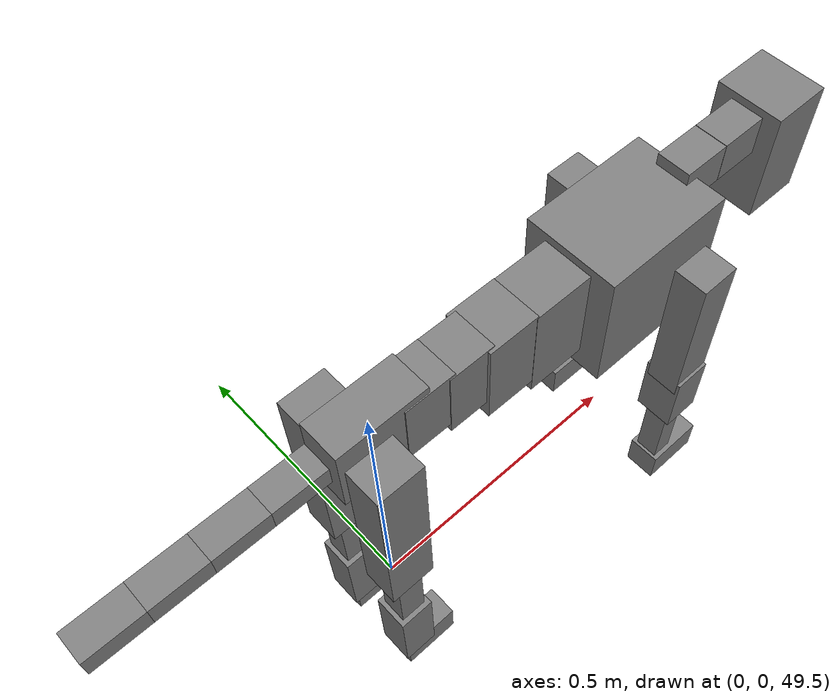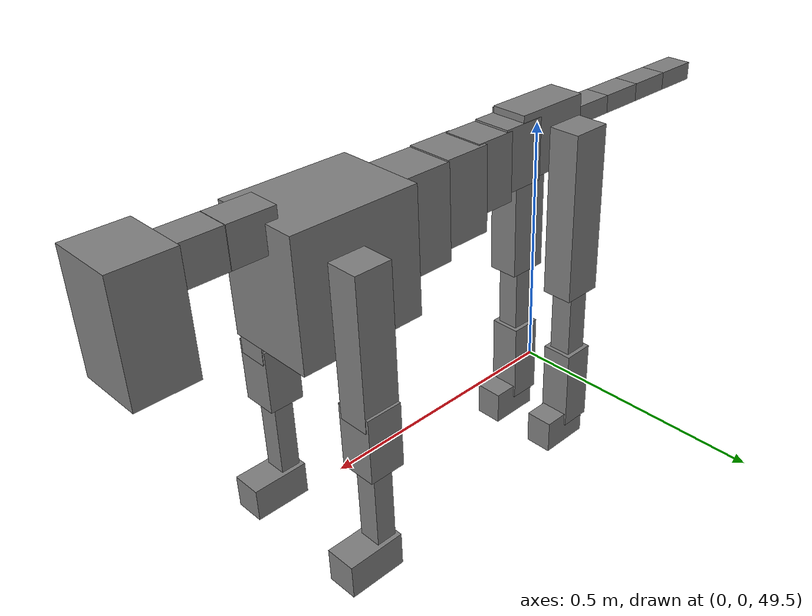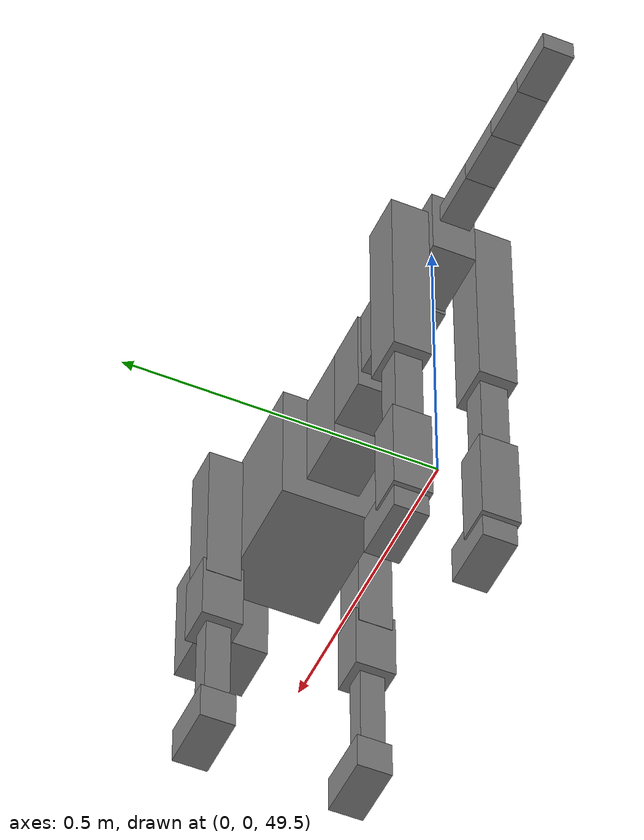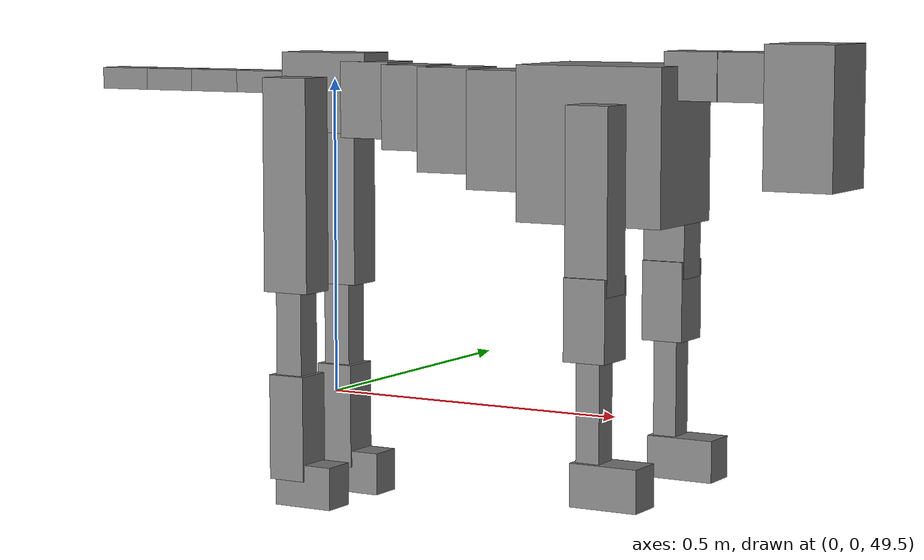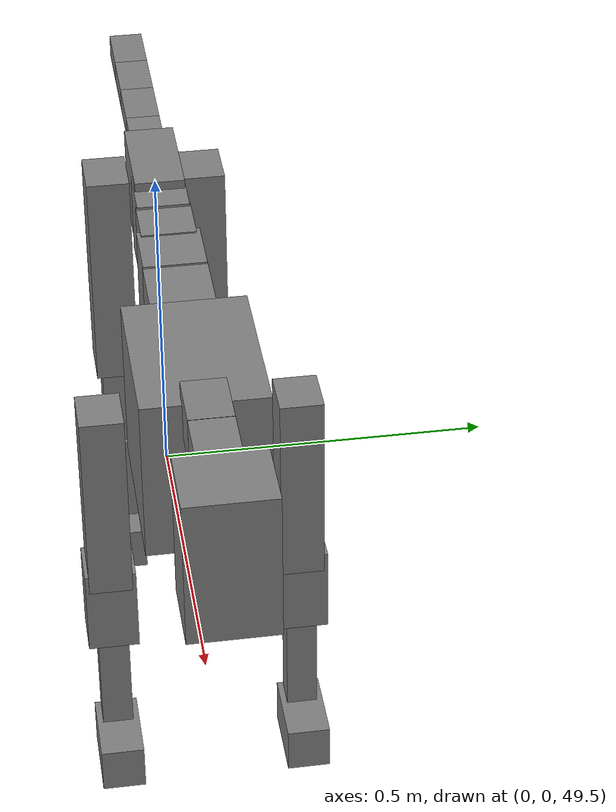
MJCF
<mujoco model="dog">

    <default>
        <joint armature="0.02" stiffness="1" damping="0.2" limited="true"/>
        <geom condim="3" friction="1 0.05 0.05" margin="0.01"/>
        <motor ctrllimited="true" ctrlrange="-1.0 1.0" forcelimited="true" gear="50"/>
    </default>

    <compiler inertiafromgeom="true" angle="radian"/>

    <option timestep="0.016" iterations="50" tolerance="1e-10" solver="Newton" jacobian="dense" cone="pyramidal"/>

    <size nconmax="20000" njmax="60000" nstack="5000000"/>
    <visual>
        <map force="0.1" zfar="30"/>
        <rgba haze="0.15 0.25 0.35 1"/>
        <quality shadowsize="2048"/>
        <global offwidth="800" offheight="800"/>
    </visual>

    <asset>
        <texture type="skybox" builtin="gradient" rgb1="0.3 0.5 0.7" rgb2="0 0 0" width="512" height="512"/>
        <texture name="texplane" type="2d" builtin="checker" rgb1=".2 .3 .4" rgb2=".1 0.15 0.2" width="512" height="512"
                 mark="cross" markrgb=".8 .8 .8"/>
        <texture name="texgeom" type="cube" builtin="flat" mark="cross" width="127" height="1278" rgb1="0.8 0.6 0.4"
                 rgb2="0.8 0.6 0.4" markrgb="1 1 1" random="0.01"/>

        <material name="matplane" reflectance="0.3" texture="texplane" texrepeat="1 1" texuniform="true"/>
        <material name="matgeom" texture="texgeom" texuniform="true" rgba="0.8 0.6 .4 1"/>
    </asset>

    <worldbody>
        <geom name="floor" pos="0 0 0" size="0 0 .25" type="plane" material="matplane" condim="3"/>

        <light directional="false" diffuse=".2 .2 .2" specular="0 0 0" pos="0 0 5" dir="0 0 -1" castshadow="false"/>
        <light mode="targetbodycom" target="torso" directional="false" diffuse=".8 .8 .8" specular="0.3 0.3 0.3"
               pos="0 0 4.0" dir="0 0 -1"/>

        <body name="root" pos="0 0 50">
            <freejoint name="root_1"/>
            <geom type="box" pos="0 0 -0.02" size="0.0774  0.0358  0.063" density="2030"/>

            <body name="spine1" pos="0.054 0 0">
                <joint name="spine1_y" axis="0 1 0" range="0 0.7" limited="true"/>
                <geom type="box" pos="0.02375 0 -0.03" size="0.04375  0.0375  0.05985" density="2030"/>

                <body name="spine2" pos="0.0612 0 0">
                    <joint name="spine2_y" axis="0 1 0" range="-0.15 0.15" limited="true"/>
                    <geom type="box" pos="0.03555  0  -0.04" size="0.04055  0.039  0.06615" density="2030"/>

                    <body name="spine3" pos="0.0730 0 0">
                        <joint name="spine3_y" axis="0 1 0" range="-0.15 0.15" limited="true"/>
                        <geom type="box" pos="0.03555  0  -0.057" size="0.04555  0.0445  0.081" density="2030"/>

                        <body name="spine4" pos="0.0780 0 0">
                            <joint name="spine4_y" axis="0 1 0" range="-0.15 0.15" limited="true"/>
                            <geom type="box" pos="0.05265  0  -0.07" size="0.05265  0.045  0.09135" density="2030"/>

                            <body name="torso" pos="0.1082 0 0">
                                <joint name="torso_y" axis="0 1 0" range="-0.15 0.15" limited="true"/>
                                <geom type="box" pos="0.11925  0  -0.085" size="0.11925  0.085  0.11745"
                                      density="2030"/>

                                <body name="neck1" pos="0.2160  0   0.0180">
                                    <joint name="neck1_y" axis="0 1 0" range="-1.2  -1" limited="true"/>
                                    <geom type="box" pos="0.0423  0  0" size="0.0423  0.03  0.036" density="2325"/>

                                    <body name="neck2" pos="0.0853  0  0">
                                        <joint name="neck2_y" axis="0 1 0" range="0.1  0" limited="true"/>
                                        <geom type="box" pos="0.0423  0  0" size="0.0423  0.03  0.036" density="2325"/>

                                        <body name="head" pos="0.0853  0  0">
                                            <joint name="head_y" axis="0 1 0" range="-0.3  -0.2" limited="true"/>
                                            <geom type="box" pos="0.0531  0  -0.055" size="0.0531  0.06  0.1044"
                                                  density="4030"/>

                                        </body>
                                    </body>
                                </body>

                                <body name="front_shoulder" pos="0.156  0   -0.0480">
                                    <joint name="front_shoulder_y" axis="0 1 0" range="-1 1.5" limited="true"/>
                                    <geom type="box" pos="0 0.13 -0.1112" size="0.0342  0.0293  0.1379" density="1158"/>
                                    <geom type="box" pos="0 -0.13 -0.1112" size="0.0342  0.0293  0.1379"
                                          density="1158"/>

                                    <body name="front_elbow" pos="0  0  -0.2224">
                                        <joint name="front_elbow_y" axis="0 1 0" range="-2 0" limited="true"/>
                                        <geom type="box" pos="0 0.13 -0.0616" size="0.0335  0.0343  0.0616"
                                              density="1081"/>
                                        <geom type="box" pos="0 -0.13 -0.0616" size="0.0335  0.0343  0.0616"
                                              density="1081"/>

                                        <body name="front_wrist" pos="0  0  -0.1232">
                                            <joint name="front_wrist_y" axis="0 1 0" range="-0.2 0" limited="true"/>
                                            <geom type="box" pos="0 0.13 -0.0820" size="0.0189  0.0210  0.0952"
                                                  density="1664"/>
                                            <geom type="box" pos="0 -0.13 -0.0820" size="0.0189  0.0210  0.0952"
                                                  density="1664"/>

                                            <body name="front_finger_end" pos="0  0  -0.1640">
                                                <joint name="front_finger_y" axis="0 1 0" range="-0.4 1"
                                                       limited="true"/>
                                                <geom type="box" pos="0.0294  0.13  -0.0175"
                                                      size="0.0540  0.0294  0.0325" density="1515"/>
                                                <geom type="box" pos="0.0294  -0.13  -0.0175"
                                                      size="0.0540  0.0294  0.0325" density="1515"/>

                                            </body>

                                        </body>
                                    </body>
                                </body>

                            </body>
                        </body>
                    </body>
                </body>
            </body>

            <body name="back_hip" pos="-0.03 0 -0.018">
                <joint name="back_hip_y" axis="0 1 0" range="-1.5 0.3" limited="true"/>
                <geom type="box" pos="0 0.07 -0.1463" size="0.0399  0.0313  0.1691" density="1154"/>
                <geom type="box" pos="0 -0.07 -0.1463" size="0.0399  0.0313  0.1691" density="1154"/>

                <body name="back_knee" pos="0  0  -0.2926">
                    <joint name="back_knee_y" axis="0 1 0" range="0 2.8" limited="true"/>
                    <geom type="box" pos="0 0.07 -0.0830" size="0.0230  0.0226  0.0986" density="1227"/>
                    <geom type="box" pos="0 -0.07 -0.0830" size="0.0230  0.0226  0.0986" density="1227"/>

                    <body name="back_ankle" pos="0  0  -0.1660">
                        <joint name="back_ankle_y" axis="0 1 0" range="-2.2 0" limited="true"/>
                        <geom type="box" pos="0 0.07 -0.0724" size="0.0312  0.0312  0.0836" density="1284"/>
                        <geom type="box" pos="0 -0.07 -0.0724" size="0.0312  0.0312  0.0836" density="1284"/>

                        <body name="back_toe_end" pos="0  0  -0.1447">
                            <joint name="back_toe_y" axis="0 1 0" range="-0.4 1" limited="true"/>
                            <geom type="box" pos="0.0278  0.07  -0.0189" size="0.0510  0.0278  0.0339" density="1515"/>
                            <geom type="box" pos="0.0278  -0.07  -0.0189" size="0.0510  0.0278  0.0339" density="1515"/>

                        </body>
                    </body>
                </body>
            </body>

            <body name="tail1" pos="-0.074 0 -0.006">
                <joint name="tail1_y" axis="0 1 0" range="-0.2 0.2" limited="true"/>
                <geom type="box" pos="-0.0536  0  0" size="0.045  0.025  0.0175" density="1587"/>

                <body name="tail2" pos="-0.09 0 0">
                    <joint name="tail2_y" axis="0 1 0" range="-0.2 0.2" limited="true"/>
                    <geom type="box" pos="-0.0536  0  0" size="0.045  0.025  0.0175" density="1587"/>

                    <body name="tail3" pos="-0.09 0 0">
                        <joint name="tail3_y" axis="0 1 0" range="-0.2 0.2" limited="true"/>
                        <geom type="box" pos="-0.0536  0  0" size="0.045  0.025  0.0175" density="1587"/>

                        <body name="tail4" pos="-0.09 0 0">
                            <joint name="tail4_y" axis="0 1 0" range="-0.2 0.2" limited="true"/>
                            <geom type="box" pos="-0.0536  0  0" size="0.045  0.025  0.0175" density="1587"/>

                        </body>
                    </body>
                </body>
            </body>
        </body>
    </worldbody>

    <actuator>
        <motor joint="spine1_y" forcerange="-150 150     "/>
        <motor joint="spine2_y" forcerange="-150 150     "/>
        <motor joint="spine3_y" forcerange="-150 150     "/>
        <motor joint="spine4_y" forcerange="-150 150     "/>
        <motor joint="torso_y" forcerange="-150 150     "/>
        <motor joint="neck1_y" forcerange="-100 100       "/>
        <motor joint="neck2_y" forcerange="-100 100       "/>
        <motor joint="head_y" forcerange="-150 150       "/>
        <motor joint="front_shoulder_y" forcerange="-134.75 160.40"/>
        <motor joint="front_elbow_y" forcerange="-183.24 165.97"/>
        <motor joint="front_wrist_y" forcerange="-71.76 96.35"/>
        <motor joint="front_finger_y" forcerange="-34.85 82.12"/>
        <motor joint="back_hip_y" forcerange="-243.51 373.98"/>
        <motor joint="back_knee_y" forcerange="-283.63 245.57"/>
        <motor joint="back_angle_y" forcerange="-202.57 197.28"/>
        <motor joint="back_toe_y" forcerange="-74.16 68.57"/>
        <motor joint="tail1_y" forcerange="-50 50     "/>
        <motor joint="tail2_y" forcerange="-50 50     "/>
        <motor joint="tail3_y" forcerange="-50 50     "/>
        <motor joint="tail4_y" forcerange="-50 50     "/>
    </actuator>
</mujoco>
